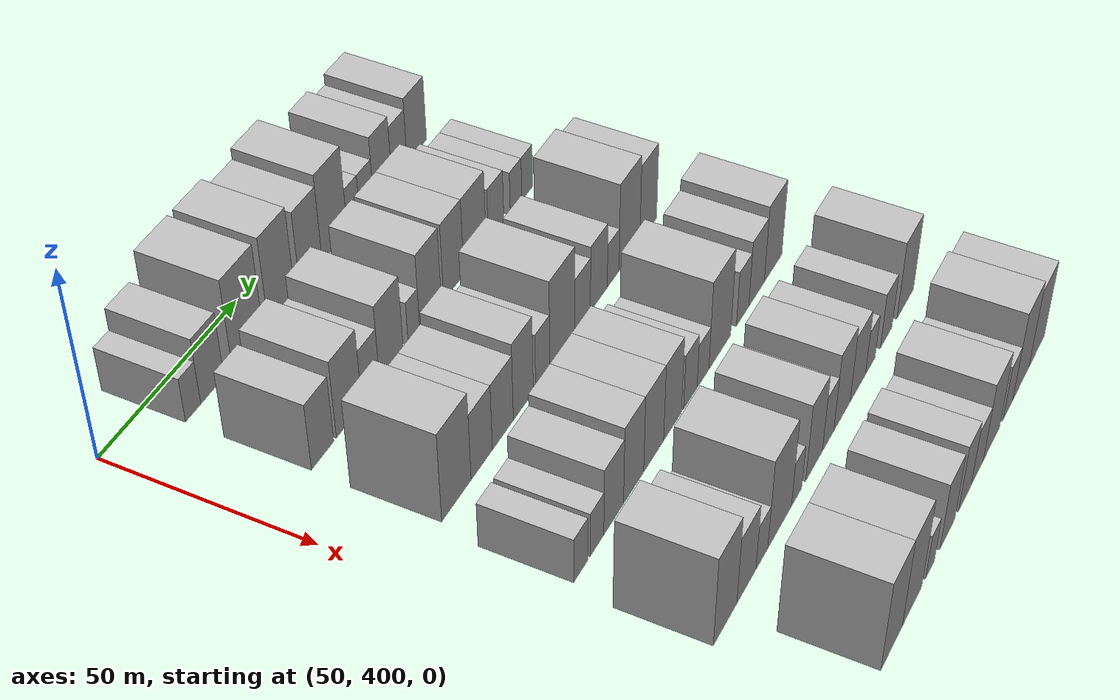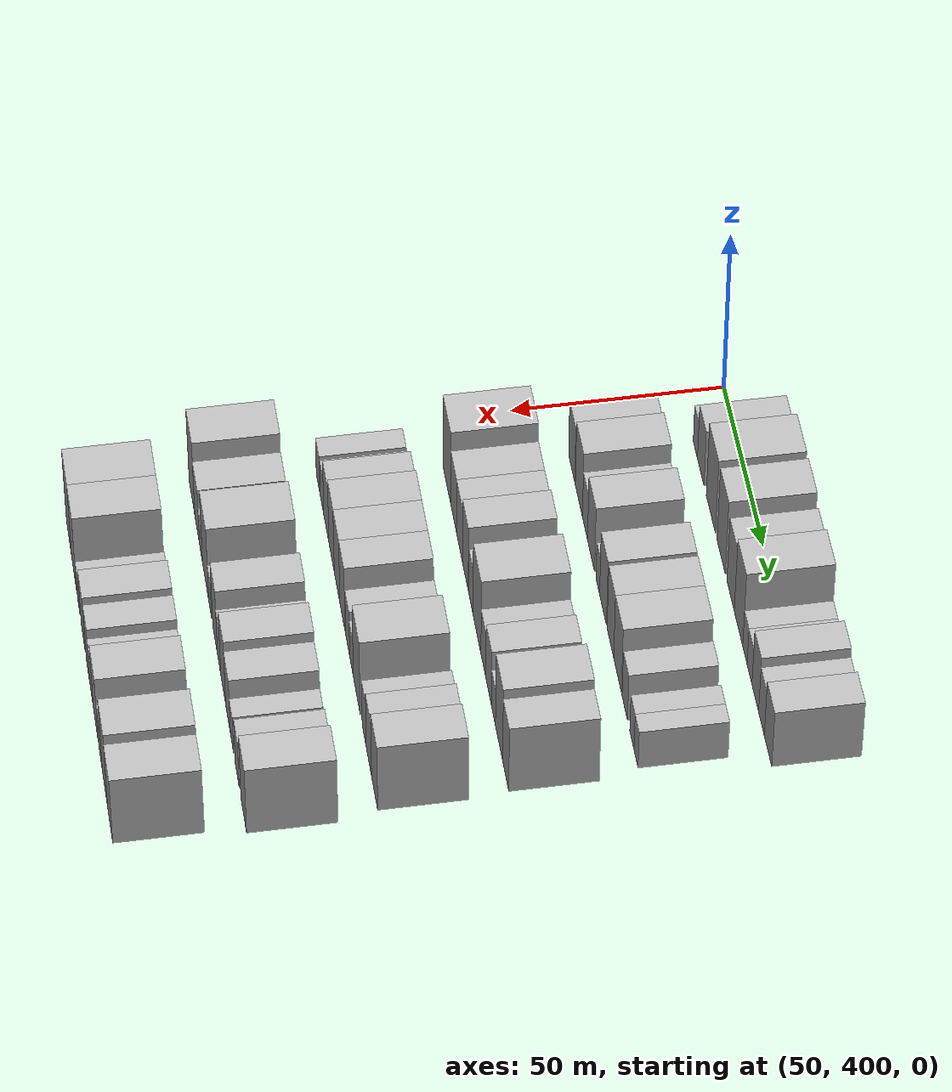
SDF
<sdf version="1.6">
 <world name="default">
  <model name="building_106">
   <static>1</static>
   <pose>50.0000 418.4999 0 0.000000 0.000000 0.000000</pose>
   <link name="link">
    <pose>0 0 6.00 0 0 0</pose>
    <collision name="collision"><geometry><box><size>20.0000 5.4860 12.0000</size></box></geometry></collision>
    <visual name="visual">
     <cast_shadows>0</cast_shadows>
     <geometry><box><size>20.0000 5.4860 12.0000</size></box></geometry>
     <material>
      <script>
       <uri>model://HANNAS_wall/materials/scripts</uri>
       <uri>model://HANNAS_wall/materials/textures</uri>
       <name>vrc/HANNAS_wall</name>
      </script>
     </material>
    </visual>
   </link>
  </model>
  <model name="building_107">
   <static>1</static>
   <pose>50.0000 425.4854 0 0.000000 0.000000 0.000000</pose>
   <link name="link">
    <pose>0 0 9.00 0 0 0</pose>
    <collision name="collision"><geometry><box><size>20.0000 8.4850 18.0000</size></box></geometry></collision>
    <visual name="visual">
     <cast_shadows>0</cast_shadows>
     <geometry><box><size>20.0000 8.4850 18.0000</size></box></geometry>
     <material>
      <script>
       <uri>model://HANNAS_wall/materials/scripts</uri>
       <uri>model://HANNAS_wall/materials/textures</uri>
       <name>vrc/HANNAS_wall</name>
      </script>
     </material>
    </visual>
   </link>
  </model>
  <model name="building_108">
   <static>1</static>
   <pose>50.0000 438.6459 0 0.000000 0.000000 0.000000</pose>
   <link name="link">
    <pose>0 0 12.00 0 0 0</pose>
    <collision name="collision"><geometry><box><size>20.0000 11.8359 24.0000</size></box></geometry></collision>
    <visual name="visual">
     <cast_shadows>0</cast_shadows>
     <geometry><box><size>20.0000 11.8359 24.0000</size></box></geometry>
     <material>
      <script>
       <uri>model://HANNAS_wall/materials/scripts</uri>
       <uri>model://HANNAS_wall/materials/textures</uri>
       <name>vrc/HANNAS_wall</name>
      </script>
     </material>
    </visual>
   </link>
  </model>
  <model name="building_109">
   <static>1</static>
   <pose>50.0000 451.8239 0 0.000000 0.000000 0.000000</pose>
   <link name="link">
    <pose>0 0 12.00 0 0 0</pose>
    <collision name="collision"><geometry><box><size>20.0000 10.5201 24.0000</size></box></geometry></collision>
    <visual name="visual">
     <cast_shadows>0</cast_shadows>
     <geometry><box><size>20.0000 10.5201 24.0000</size></box></geometry>
     <material>
      <script>
       <uri>model://HANNAS_wall/materials/scripts</uri>
       <uri>model://HANNAS_wall/materials/textures</uri>
       <name>vrc/HANNAS_wall</name>
      </script>
     </material>
    </visual>
   </link>
  </model>
  <model name="building_110">
   <static>1</static>
   <pose>50.0000 463.6680 0 0.000000 0.000000 0.000000</pose>
   <link name="link">
    <pose>0 0 10.50 0 0 0</pose>
    <collision name="collision"><geometry><box><size>20.0000 9.1683 21.0000</size></box></geometry></collision>
    <visual name="visual">
     <cast_shadows>0</cast_shadows>
     <geometry><box><size>20.0000 9.1683 21.0000</size></box></geometry>
     <material>
      <script>
       <uri>model://HANNAS_wall/materials/scripts</uri>
       <uri>model://HANNAS_wall/materials/textures</uri>
       <name>vrc/HANNAS_wall</name>
      </script>
     </material>
    </visual>
   </link>
  </model>
  <model name="building_111">
   <static>1</static>
   <pose>50.0000 473.5326 0 0.000000 0.000000 0.000000</pose>
   <link name="link">
    <pose>0 0 12.00 0 0 0</pose>
    <collision name="collision"><geometry><box><size>20.0000 10.5609 24.0000</size></box></geometry></collision>
    <visual name="visual">
     <cast_shadows>0</cast_shadows>
     <geometry><box><size>20.0000 10.5609 24.0000</size></box></geometry>
     <material>
      <script>
       <uri>model://HANNAS_wall/materials/scripts</uri>
       <uri>model://HANNAS_wall/materials/textures</uri>
       <name>vrc/HANNAS_wall</name>
      </script>
     </material>
    </visual>
   </link>
  </model>
  <model name="building_112">
   <static>1</static>
   <pose>50.0000 481.4887 0 0.000000 0.000000 0.000000</pose>
   <link name="link">
    <pose>0 0 6.00 0 0 0</pose>
    <collision name="collision"><geometry><box><size>20.0000 5.3514 12.0000</size></box></geometry></collision>
    <visual name="visual">
     <cast_shadows>0</cast_shadows>
     <geometry><box><size>20.0000 5.3514 12.0000</size></box></geometry>
     <material>
      <script>
       <uri>model://HANNAS_wall/materials/scripts</uri>
       <uri>model://HANNAS_wall/materials/textures</uri>
       <name>vrc/HANNAS_wall</name>
      </script>
     </material>
    </visual>
   </link>
  </model>
  <model name="building_113">
   <static>1</static>
   <pose>50.0000 487.1434 0 0.000000 0.000000 0.000000</pose>
   <link name="link">
    <pose>0 0 6.00 0 0 0</pose>
    <collision name="collision"><geometry><box><size>20.0000 5.9581 12.0000</size></box></geometry></collision>
    <visual name="visual">
     <cast_shadows>0</cast_shadows>
     <geometry><box><size>20.0000 5.9581 12.0000</size></box></geometry>
     <material>
      <script>
       <uri>model://HANNAS_wall/materials/scripts</uri>
       <uri>model://HANNAS_wall/materials/textures</uri>
       <name>vrc/HANNAS_wall</name>
      </script>
     </material>
    </visual>
   </link>
  </model>
  <model name="building_114">
   <static>1</static>
   <pose>50.0000 494.1637 0 0.000000 0.000000 0.000000</pose>
   <link name="link">
    <pose>0 0 9.00 0 0 0</pose>
    <collision name="collision"><geometry><box><size>20.0000 8.0824 18.0000</size></box></geometry></collision>
    <visual name="visual">
     <cast_shadows>0</cast_shadows>
     <geometry><box><size>20.0000 8.0824 18.0000</size></box></geometry>
     <material>
      <script>
       <uri>model://HANNAS_wall/materials/scripts</uri>
       <uri>model://HANNAS_wall/materials/textures</uri>
       <name>vrc/HANNAS_wall</name>
      </script>
     </material>
    </visual>
   </link>
  </model>
  <model name="building_115">
   <static>1</static>
   <pose>50.0000 501.6531 0 0.000000 0.000000 0.000000</pose>
   <link name="link">
    <pose>0 0 7.50 0 0 0</pose>
    <collision name="collision"><geometry><box><size>20.0000 6.8965 15.0000</size></box></geometry></collision>
    <visual name="visual">
     <cast_shadows>0</cast_shadows>
     <geometry><box><size>20.0000 6.8965 15.0000</size></box></geometry>
     <material>
      <script>
       <uri>model://HANNAS_wall/materials/scripts</uri>
       <uri>model://HANNAS_wall/materials/textures</uri>
       <name>vrc/HANNAS_wall</name>
      </script>
     </material>
    </visual>
   </link>
  </model>
  <model name="building_116">
   <static>1</static>
   <pose>50.0000 509.5723 0 0.000000 0.000000 0.000000</pose>
   <link name="link">
    <pose>0 0 9.00 0 0 0</pose>
    <collision name="collision"><geometry><box><size>20.0000 8.9418 18.0000</size></box></geometry></collision>
    <visual name="visual">
     <cast_shadows>0</cast_shadows>
     <geometry><box><size>20.0000 8.9418 18.0000</size></box></geometry>
     <material>
      <script>
       <uri>model://HANNAS_wall/materials/scripts</uri>
       <uri>model://HANNAS_wall/materials/textures</uri>
       <name>vrc/HANNAS_wall</name>
      </script>
     </material>
    </visual>
   </link>
  </model>
  <model name="building_219">
   <static>1</static>
   <pose>79.0000 419.9383 0 0.000000 0.000000 0.000000</pose>
   <link name="link">
    <pose>0 0 9.00 0 0 0</pose>
    <collision name="collision"><geometry><box><size>20.0000 8.4536 18.0000</size></box></geometry></collision>
    <visual name="visual">
     <cast_shadows>0</cast_shadows>
     <geometry><box><size>20.0000 8.4536 18.0000</size></box></geometry>
     <material>
      <script>
       <uri>model://HANNAS_wall/materials/scripts</uri>
       <uri>model://HANNAS_wall/materials/textures</uri>
       <name>vrc/HANNAS_wall</name>
      </script>
     </material>
    </visual>
   </link>
  </model>
  <model name="building_220">
   <static>1</static>
   <pose>79.0000 430.1579 0 0.000000 0.000000 0.000000</pose>
   <link name="link">
    <pose>0 0 10.50 0 0 0</pose>
    <collision name="collision"><geometry><box><size>20.0000 9.9855 21.0000</size></box></geometry></collision>
    <visual name="visual">
     <cast_shadows>0</cast_shadows>
     <geometry><box><size>20.0000 9.9855 21.0000</size></box></geometry>
     <material>
      <script>
       <uri>model://HANNAS_wall/materials/scripts</uri>
       <uri>model://HANNAS_wall/materials/textures</uri>
       <name>vrc/HANNAS_wall</name>
      </script>
     </material>
    </visual>
   </link>
  </model>
  <model name="building_221">
   <static>1</static>
   <pose>79.0000 438.7008 0 0.000000 0.000000 0.000000</pose>
   <link name="link">
    <pose>0 0 7.50 0 0 0</pose>
    <collision name="collision"><geometry><box><size>20.0000 7.1002 15.0000</size></box></geometry></collision>
    <visual name="visual">
     <cast_shadows>0</cast_shadows>
     <geometry><box><size>20.0000 7.1002 15.0000</size></box></geometry>
     <material>
      <script>
       <uri>model://HANNAS_wall/materials/scripts</uri>
       <uri>model://HANNAS_wall/materials/textures</uri>
       <name>vrc/HANNAS_wall</name>
      </script>
     </material>
    </visual>
   </link>
  </model>
  <model name="building_222">
   <static>1</static>
   <pose>79.0000 447.1148 0 0.000000 0.000000 0.000000</pose>
   <link name="link">
    <pose>0 0 10.50 0 0 0</pose>
    <collision name="collision"><geometry><box><size>20.0000 9.7279 21.0000</size></box></geometry></collision>
    <visual name="visual">
     <cast_shadows>0</cast_shadows>
     <geometry><box><size>20.0000 9.7279 21.0000</size></box></geometry>
     <material>
      <script>
       <uri>model://HANNAS_wall/materials/scripts</uri>
       <uri>model://HANNAS_wall/materials/textures</uri>
       <name>vrc/HANNAS_wall</name>
      </script>
     </material>
    </visual>
   </link>
  </model>
  <model name="building_223">
   <static>1</static>
   <pose>79.0000 456.4185 0 0.000000 0.000000 0.000000</pose>
   <link name="link">
    <pose>0 0 6.00 0 0 0</pose>
    <collision name="collision"><geometry><box><size>20.0000 4.8795 12.0000</size></box></geometry></collision>
    <visual name="visual">
     <cast_shadows>0</cast_shadows>
     <geometry><box><size>20.0000 4.8795 12.0000</size></box></geometry>
     <material>
      <script>
       <uri>model://HANNAS_wall/materials/scripts</uri>
       <uri>model://HANNAS_wall/materials/textures</uri>
       <name>vrc/HANNAS_wall</name>
      </script>
     </material>
    </visual>
   </link>
  </model>
  <model name="building_224">
   <static>1</static>
   <pose>79.0000 463.4674 0 0.000000 0.000000 0.000000</pose>
   <link name="link">
    <pose>0 0 10.50 0 0 0</pose>
    <collision name="collision"><geometry><box><size>20.0000 9.2183 21.0000</size></box></geometry></collision>
    <visual name="visual">
     <cast_shadows>0</cast_shadows>
     <geometry><box><size>20.0000 9.2183 21.0000</size></box></geometry>
     <material>
      <script>
       <uri>model://HANNAS_wall/materials/scripts</uri>
       <uri>model://HANNAS_wall/materials/textures</uri>
       <name>vrc/HANNAS_wall</name>
      </script>
     </material>
    </visual>
   </link>
  </model>
  <model name="building_225">
   <static>1</static>
   <pose>79.0000 473.5133 0 0.000000 0.000000 0.000000</pose>
   <link name="link">
    <pose>0 0 10.50 0 0 0</pose>
    <collision name="collision"><geometry><box><size>20.0000 8.8735 21.0000</size></box></geometry></collision>
    <visual name="visual">
     <cast_shadows>0</cast_shadows>
     <geometry><box><size>20.0000 8.8735 21.0000</size></box></geometry>
     <material>
      <script>
       <uri>model://HANNAS_wall/materials/scripts</uri>
       <uri>model://HANNAS_wall/materials/textures</uri>
       <name>vrc/HANNAS_wall</name>
      </script>
     </material>
    </visual>
   </link>
  </model>
  <model name="building_226">
   <static>1</static>
   <pose>79.0000 483.0344 0 0.000000 0.000000 0.000000</pose>
   <link name="link">
    <pose>0 0 10.50 0 0 0</pose>
    <collision name="collision"><geometry><box><size>20.0000 10.1686 21.0000</size></box></geometry></collision>
    <visual name="visual">
     <cast_shadows>0</cast_shadows>
     <geometry><box><size>20.0000 10.1686 21.0000</size></box></geometry>
     <material>
      <script>
       <uri>model://HANNAS_wall/materials/scripts</uri>
       <uri>model://HANNAS_wall/materials/textures</uri>
       <name>vrc/HANNAS_wall</name>
      </script>
     </material>
    </visual>
   </link>
  </model>
  <model name="building_227">
   <static>1</static>
   <pose>79.0000 492.7130 0 0.000000 0.000000 0.000000</pose>
   <link name="link">
    <pose>0 0 7.50 0 0 0</pose>
    <collision name="collision"><geometry><box><size>20.0000 7.1885 15.0000</size></box></geometry></collision>
    <visual name="visual">
     <cast_shadows>0</cast_shadows>
     <geometry><box><size>20.0000 7.1885 15.0000</size></box></geometry>
     <material>
      <script>
       <uri>model://HANNAS_wall/materials/scripts</uri>
       <uri>model://HANNAS_wall/materials/textures</uri>
       <name>vrc/HANNAS_wall</name>
      </script>
     </material>
    </visual>
   </link>
  </model>
  <model name="building_228">
   <static>1</static>
   <pose>79.0000 502.0657 0 0.000000 0.000000 0.000000</pose>
   <link name="link">
    <pose>0 0 6.00 0 0 0</pose>
    <collision name="collision"><geometry><box><size>20.0000 5.5170 12.0000</size></box></geometry></collision>
    <visual name="visual">
     <cast_shadows>0</cast_shadows>
     <geometry><box><size>20.0000 5.5170 12.0000</size></box></geometry>
     <material>
      <script>
       <uri>model://HANNAS_wall/materials/scripts</uri>
       <uri>model://HANNAS_wall/materials/textures</uri>
       <name>vrc/HANNAS_wall</name>
      </script>
     </material>
    </visual>
   </link>
  </model>
  <model name="building_229">
   <static>1</static>
   <pose>79.0000 507.4624 0 0.000000 0.000000 0.000000</pose>
   <link name="link">
    <pose>0 0 6.00 0 0 0</pose>
    <collision name="collision"><geometry><box><size>20.0000 5.2763 12.0000</size></box></geometry></collision>
    <visual name="visual">
     <cast_shadows>0</cast_shadows>
     <geometry><box><size>20.0000 5.2763 12.0000</size></box></geometry>
     <material>
      <script>
       <uri>model://HANNAS_wall/materials/scripts</uri>
       <uri>model://HANNAS_wall/materials/textures</uri>
       <name>vrc/HANNAS_wall</name>
      </script>
     </material>
    </visual>
   </link>
  </model>
  <model name="building_322">
   <static>1</static>
   <pose>108.0000 421.1063 0 0.000000 0.000000 0.000000</pose>
   <link name="link">
    <pose>0 0 12.00 0 0 0</pose>
    <collision name="collision"><geometry><box><size>20.0000 11.8080 24.0000</size></box></geometry></collision>
    <visual name="visual">
     <cast_shadows>0</cast_shadows>
     <geometry><box><size>20.0000 11.8080 24.0000</size></box></geometry>
     <material>
      <script>
       <uri>model://HANNAS_wall/materials/scripts</uri>
       <uri>model://HANNAS_wall/materials/textures</uri>
       <name>vrc/HANNAS_wall</name>
      </script>
     </material>
    </visual>
   </link>
  </model>
  <model name="building_323">
   <static>1</static>
   <pose>108.0000 431.4260 0 0.000000 0.000000 0.000000</pose>
   <link name="link">
    <pose>0 0 9.00 0 0 0</pose>
    <collision name="collision"><geometry><box><size>20.0000 8.8314 18.0000</size></box></geometry></collision>
    <visual name="visual">
     <cast_shadows>0</cast_shadows>
     <geometry><box><size>20.0000 8.8314 18.0000</size></box></geometry>
     <material>
      <script>
       <uri>model://HANNAS_wall/materials/scripts</uri>
       <uri>model://HANNAS_wall/materials/textures</uri>
       <name>vrc/HANNAS_wall</name>
      </script>
     </material>
    </visual>
   </link>
  </model>
  <model name="building_324">
   <static>1</static>
   <pose>108.0000 440.2986 0 0.000000 0.000000 0.000000</pose>
   <link name="link">
    <pose>0 0 9.00 0 0 0</pose>
    <collision name="collision"><geometry><box><size>20.0000 8.9138 18.0000</size></box></geometry></collision>
    <visual name="visual">
     <cast_shadows>0</cast_shadows>
     <geometry><box><size>20.0000 8.9138 18.0000</size></box></geometry>
     <material>
      <script>
       <uri>model://HANNAS_wall/materials/scripts</uri>
       <uri>model://HANNAS_wall/materials/textures</uri>
       <name>vrc/HANNAS_wall</name>
      </script>
     </material>
    </visual>
   </link>
  </model>
  <model name="building_325">
   <static>1</static>
   <pose>108.0000 449.1012 0 0.000000 0.000000 0.000000</pose>
   <link name="link">
    <pose>0 0 10.50 0 0 0</pose>
    <collision name="collision"><geometry><box><size>20.0000 8.6914 21.0000</size></box></geometry></collision>
    <visual name="visual">
     <cast_shadows>0</cast_shadows>
     <geometry><box><size>20.0000 8.6914 21.0000</size></box></geometry>
     <material>
      <script>
       <uri>model://HANNAS_wall/materials/scripts</uri>
       <uri>model://HANNAS_wall/materials/textures</uri>
       <name>vrc/HANNAS_wall</name>
      </script>
     </material>
    </visual>
   </link>
  </model>
  <model name="building_326">
   <static>1</static>
   <pose>108.0000 457.6568 0 0.000000 0.000000 0.000000</pose>
   <link name="link">
    <pose>0 0 7.50 0 0 0</pose>
    <collision name="collision"><geometry><box><size>20.0000 6.4198 15.0000</size></box></geometry></collision>
    <visual name="visual">
     <cast_shadows>0</cast_shadows>
     <geometry><box><size>20.0000 6.4198 15.0000</size></box></geometry>
     <material>
      <script>
       <uri>model://HANNAS_wall/materials/scripts</uri>
       <uri>model://HANNAS_wall/materials/textures</uri>
       <name>vrc/HANNAS_wall</name>
      </script>
     </material>
    </visual>
   </link>
  </model>
  <model name="building_327">
   <static>1</static>
   <pose>108.0000 466.6124 0 0.000000 0.000000 0.000000</pose>
   <link name="link">
    <pose>0 0 12.00 0 0 0</pose>
    <collision name="collision"><geometry><box><size>20.0000 11.4914 24.0000</size></box></geometry></collision>
    <visual name="visual">
     <cast_shadows>0</cast_shadows>
     <geometry><box><size>20.0000 11.4914 24.0000</size></box></geometry>
     <material>
      <script>
       <uri>model://HANNAS_wall/materials/scripts</uri>
       <uri>model://HANNAS_wall/materials/textures</uri>
       <name>vrc/HANNAS_wall</name>
      </script>
     </material>
    </visual>
   </link>
  </model>
  <model name="building_328">
   <static>1</static>
   <pose>108.0000 475.9756 0 0.000000 0.000000 0.000000</pose>
   <link name="link">
    <pose>0 0 7.50 0 0 0</pose>
    <collision name="collision"><geometry><box><size>20.0000 7.2351 15.0000</size></box></geometry></collision>
    <visual name="visual">
     <cast_shadows>0</cast_shadows>
     <geometry><box><size>20.0000 7.2351 15.0000</size></box></geometry>
     <material>
      <script>
       <uri>model://HANNAS_wall/materials/scripts</uri>
       <uri>model://HANNAS_wall/materials/textures</uri>
       <name>vrc/HANNAS_wall</name>
      </script>
     </material>
    </visual>
   </link>
  </model>
  <model name="building_329">
   <static>1</static>
   <pose>108.0000 483.6457 0 0.000000 0.000000 0.000000</pose>
   <link name="link">
    <pose>0 0 9.00 0 0 0</pose>
    <collision name="collision"><geometry><box><size>20.0000 8.1050 18.0000</size></box></geometry></collision>
    <visual name="visual">
     <cast_shadows>0</cast_shadows>
     <geometry><box><size>20.0000 8.1050 18.0000</size></box></geometry>
     <material>
      <script>
       <uri>model://HANNAS_wall/materials/scripts</uri>
       <uri>model://HANNAS_wall/materials/textures</uri>
       <name>vrc/HANNAS_wall</name>
      </script>
     </material>
    </visual>
   </link>
  </model>
  <model name="building_330">
   <static>1</static>
   <pose>108.0000 490.5838 0 0.000000 0.000000 0.000000</pose>
   <link name="link">
    <pose>0 0 6.00 0 0 0</pose>
    <collision name="collision"><geometry><box><size>20.0000 5.7712 12.0000</size></box></geometry></collision>
    <visual name="visual">
     <cast_shadows>0</cast_shadows>
     <geometry><box><size>20.0000 5.7712 12.0000</size></box></geometry>
     <material>
      <script>
       <uri>model://HANNAS_wall/materials/scripts</uri>
       <uri>model://HANNAS_wall/materials/textures</uri>
       <name>vrc/HANNAS_wall</name>
      </script>
     </material>
    </visual>
   </link>
  </model>
  <model name="building_331">
   <static>1</static>
   <pose>108.0000 498.6808 0 0.000000 0.000000 0.000000</pose>
   <link name="link">
    <pose>0 0 12.00 0 0 0</pose>
    <collision name="collision"><geometry><box><size>20.0000 10.4228 24.0000</size></box></geometry></collision>
    <visual name="visual">
     <cast_shadows>0</cast_shadows>
     <geometry><box><size>20.0000 10.4228 24.0000</size></box></geometry>
     <material>
      <script>
       <uri>model://HANNAS_wall/materials/scripts</uri>
       <uri>model://HANNAS_wall/materials/textures</uri>
       <name>vrc/HANNAS_wall</name>
      </script>
     </material>
    </visual>
   </link>
  </model>
  <model name="building_332">
   <static>1</static>
   <pose>108.0000 508.1847 0 0.000000 0.000000 0.000000</pose>
   <link name="link">
    <pose>0 0 10.50 0 0 0</pose>
    <collision name="collision"><geometry><box><size>20.0000 8.5850 21.0000</size></box></geometry></collision>
    <visual name="visual">
     <cast_shadows>0</cast_shadows>
     <geometry><box><size>20.0000 8.5850 21.0000</size></box></geometry>
     <material>
      <script>
       <uri>model://HANNAS_wall/materials/scripts</uri>
       <uri>model://HANNAS_wall/materials/textures</uri>
       <name>vrc/HANNAS_wall</name>
      </script>
     </material>
    </visual>
   </link>
  </model>
  <model name="building_434">
   <static>1</static>
   <pose>137.0000 415.9030 0 0.000000 0.000000 0.000000</pose>
   <link name="link">
    <pose>0 0 6.00 0 0 0</pose>
    <collision name="collision"><geometry><box><size>20.0000 5.8945 12.0000</size></box></geometry></collision>
    <visual name="visual">
     <cast_shadows>0</cast_shadows>
     <geometry><box><size>20.0000 5.8945 12.0000</size></box></geometry>
     <material>
      <script>
       <uri>model://HANNAS_wall/materials/scripts</uri>
       <uri>model://HANNAS_wall/materials/textures</uri>
       <name>vrc/HANNAS_wall</name>
      </script>
     </material>
    </visual>
   </link>
  </model>
  <model name="building_435">
   <static>1</static>
   <pose>137.0000 422.7795 0 0.000000 0.000000 0.000000</pose>
   <link name="link">
    <pose>0 0 6.00 0 0 0</pose>
    <collision name="collision"><geometry><box><size>20.0000 5.8584 12.0000</size></box></geometry></collision>
    <visual name="visual">
     <cast_shadows>0</cast_shadows>
     <geometry><box><size>20.0000 5.8584 12.0000</size></box></geometry>
     <material>
      <script>
       <uri>model://HANNAS_wall/materials/scripts</uri>
       <uri>model://HANNAS_wall/materials/textures</uri>
       <name>vrc/HANNAS_wall</name>
      </script>
     </material>
    </visual>
   </link>
  </model>
  <model name="building_436">
   <static>1</static>
   <pose>137.0000 430.0498 0 0.000000 0.000000 0.000000</pose>
   <link name="link">
    <pose>0 0 9.00 0 0 0</pose>
    <collision name="collision"><geometry><box><size>20.0000 8.6822 18.0000</size></box></geometry></collision>
    <visual name="visual">
     <cast_shadows>0</cast_shadows>
     <geometry><box><size>20.0000 8.6822 18.0000</size></box></geometry>
     <material>
      <script>
       <uri>model://HANNAS_wall/materials/scripts</uri>
       <uri>model://HANNAS_wall/materials/textures</uri>
       <name>vrc/HANNAS_wall</name>
      </script>
     </material>
    </visual>
   </link>
  </model>
  <model name="building_437">
   <static>1</static>
   <pose>137.0000 438.9311 0 0.000000 0.000000 0.000000</pose>
   <link name="link">
    <pose>0 0 10.50 0 0 0</pose>
    <collision name="collision"><geometry><box><size>20.0000 9.0805 21.0000</size></box></geometry></collision>
    <visual name="visual">
     <cast_shadows>0</cast_shadows>
     <geometry><box><size>20.0000 9.0805 21.0000</size></box></geometry>
     <material>
      <script>
       <uri>model://HANNAS_wall/materials/scripts</uri>
       <uri>model://HANNAS_wall/materials/textures</uri>
       <name>vrc/HANNAS_wall</name>
      </script>
     </material>
    </visual>
   </link>
  </model>
  <model name="building_438">
   <static>1</static>
   <pose>137.0000 448.1184 0 0.000000 0.000000 0.000000</pose>
   <link name="link">
    <pose>0 0 10.50 0 0 0</pose>
    <collision name="collision"><geometry><box><size>20.0000 9.2941 21.0000</size></box></geometry></collision>
    <visual name="visual">
     <cast_shadows>0</cast_shadows>
     <geometry><box><size>20.0000 9.2941 21.0000</size></box></geometry>
     <material>
      <script>
       <uri>model://HANNAS_wall/materials/scripts</uri>
       <uri>model://HANNAS_wall/materials/textures</uri>
       <name>vrc/HANNAS_wall</name>
      </script>
     </material>
    </visual>
   </link>
  </model>
  <model name="building_439">
   <static>1</static>
   <pose>137.0000 457.0221 0 0.000000 0.000000 0.000000</pose>
   <link name="link">
    <pose>0 0 10.50 0 0 0</pose>
    <collision name="collision"><geometry><box><size>20.0000 8.5132 21.0000</size></box></geometry></collision>
    <visual name="visual">
     <cast_shadows>0</cast_shadows>
     <geometry><box><size>20.0000 8.5132 21.0000</size></box></geometry>
     <material>
      <script>
       <uri>model://HANNAS_wall/materials/scripts</uri>
       <uri>model://HANNAS_wall/materials/textures</uri>
       <name>vrc/HANNAS_wall</name>
      </script>
     </material>
    </visual>
   </link>
  </model>
  <model name="building_440">
   <static>1</static>
   <pose>137.0000 465.5816 0 0.000000 0.000000 0.000000</pose>
   <link name="link">
    <pose>0 0 7.50 0 0 0</pose>
    <collision name="collision"><geometry><box><size>20.0000 6.6058 15.0000</size></box></geometry></collision>
    <visual name="visual">
     <cast_shadows>0</cast_shadows>
     <geometry><box><size>20.0000 6.6058 15.0000</size></box></geometry>
     <material>
      <script>
       <uri>model://HANNAS_wall/materials/scripts</uri>
       <uri>model://HANNAS_wall/materials/textures</uri>
       <name>vrc/HANNAS_wall</name>
      </script>
     </material>
    </visual>
   </link>
  </model>
  <model name="building_441">
   <static>1</static>
   <pose>137.0000 471.8350 0 0.000000 0.000000 0.000000</pose>
   <link name="link">
    <pose>0 0 6.00 0 0 0</pose>
    <collision name="collision"><geometry><box><size>20.0000 5.9009 12.0000</size></box></geometry></collision>
    <visual name="visual">
     <cast_shadows>0</cast_shadows>
     <geometry><box><size>20.0000 5.9009 12.0000</size></box></geometry>
     <material>
      <script>
       <uri>model://HANNAS_wall/materials/scripts</uri>
       <uri>model://HANNAS_wall/materials/textures</uri>
       <name>vrc/HANNAS_wall</name>
      </script>
     </material>
    </visual>
   </link>
  </model>
  <model name="building_442">
   <static>1</static>
   <pose>137.0000 480.3517 0 0.000000 0.000000 0.000000</pose>
   <link name="link">
    <pose>0 0 12.00 0 0 0</pose>
    <collision name="collision"><geometry><box><size>20.0000 11.1327 24.0000</size></box></geometry></collision>
    <visual name="visual">
     <cast_shadows>0</cast_shadows>
     <geometry><box><size>20.0000 11.1327 24.0000</size></box></geometry>
     <material>
      <script>
       <uri>model://HANNAS_wall/materials/scripts</uri>
       <uri>model://HANNAS_wall/materials/textures</uri>
       <name>vrc/HANNAS_wall</name>
      </script>
     </material>
    </visual>
   </link>
  </model>
  <model name="building_443">
   <static>1</static>
   <pose>137.0000 492.1698 0 0.000000 0.000000 0.000000</pose>
   <link name="link">
    <pose>0 0 7.50 0 0 0</pose>
    <collision name="collision"><geometry><box><size>20.0000 6.5033 15.0000</size></box></geometry></collision>
    <visual name="visual">
     <cast_shadows>0</cast_shadows>
     <geometry><box><size>20.0000 6.5033 15.0000</size></box></geometry>
     <material>
      <script>
       <uri>model://HANNAS_wall/materials/scripts</uri>
       <uri>model://HANNAS_wall/materials/textures</uri>
       <name>vrc/HANNAS_wall</name>
      </script>
     </material>
    </visual>
   </link>
  </model>
  <model name="building_444">
   <static>1</static>
   <pose>137.0000 499.6038 0 0.000000 0.000000 0.000000</pose>
   <link name="link">
    <pose>0 0 9.00 0 0 0</pose>
    <collision name="collision"><geometry><box><size>20.0000 8.3646 18.0000</size></box></geometry></collision>
    <visual name="visual">
     <cast_shadows>0</cast_shadows>
     <geometry><box><size>20.0000 8.3646 18.0000</size></box></geometry>
     <material>
      <script>
       <uri>model://HANNAS_wall/materials/scripts</uri>
       <uri>model://HANNAS_wall/materials/textures</uri>
       <name>vrc/HANNAS_wall</name>
      </script>
     </material>
    </visual>
   </link>
  </model>
  <model name="building_445">
   <static>1</static>
   <pose>137.0000 508.6300 0 0.000000 0.000000 0.000000</pose>
   <link name="link">
    <pose>0 0 10.50 0 0 0</pose>
    <collision name="collision"><geometry><box><size>20.0000 9.6879 21.0000</size></box></geometry></collision>
    <visual name="visual">
     <cast_shadows>0</cast_shadows>
     <geometry><box><size>20.0000 9.6879 21.0000</size></box></geometry>
     <material>
      <script>
       <uri>model://HANNAS_wall/materials/scripts</uri>
       <uri>model://HANNAS_wall/materials/textures</uri>
       <name>vrc/HANNAS_wall</name>
      </script>
     </material>
    </visual>
   </link>
  </model>
  <model name="building_549">
   <static>1</static>
   <pose>166.0000 416.2551 0 0.000000 0.000000 0.000000</pose>
   <link name="link">
    <pose>0 0 12.00 0 0 0</pose>
    <collision name="collision"><geometry><box><size>20.0000 10.6991 24.0000</size></box></geometry></collision>
    <visual name="visual">
     <cast_shadows>0</cast_shadows>
     <geometry><box><size>20.0000 10.6991 24.0000</size></box></geometry>
     <material>
      <script>
       <uri>model://HANNAS_wall/materials/scripts</uri>
       <uri>model://HANNAS_wall/materials/textures</uri>
       <name>vrc/HANNAS_wall</name>
      </script>
     </material>
    </visual>
   </link>
  </model>
  <model name="building_550">
   <static>1</static>
   <pose>166.0000 426.0729 0 0.000000 0.000000 0.000000</pose>
   <link name="link">
    <pose>0 0 9.00 0 0 0</pose>
    <collision name="collision"><geometry><box><size>20.0000 8.9363 18.0000</size></box></geometry></collision>
    <visual name="visual">
     <cast_shadows>0</cast_shadows>
     <geometry><box><size>20.0000 8.9363 18.0000</size></box></geometry>
     <material>
      <script>
       <uri>model://HANNAS_wall/materials/scripts</uri>
       <uri>model://HANNAS_wall/materials/textures</uri>
       <name>vrc/HANNAS_wall</name>
      </script>
     </material>
    </visual>
   </link>
  </model>
  <model name="building_551">
   <static>1</static>
   <pose>166.0000 433.3871 0 0.000000 0.000000 0.000000</pose>
   <link name="link">
    <pose>0 0 6.00 0 0 0</pose>
    <collision name="collision"><geometry><box><size>20.0000 5.6922 12.0000</size></box></geometry></collision>
    <visual name="visual">
     <cast_shadows>0</cast_shadows>
     <geometry><box><size>20.0000 5.6922 12.0000</size></box></geometry>
     <material>
      <script>
       <uri>model://HANNAS_wall/materials/scripts</uri>
       <uri>model://HANNAS_wall/materials/textures</uri>
       <name>vrc/HANNAS_wall</name>
      </script>
     </material>
    </visual>
   </link>
  </model>
  <model name="building_552">
   <static>1</static>
   <pose>166.0000 442.0796 0 0.000000 0.000000 0.000000</pose>
   <link name="link">
    <pose>0 0 12.00 0 0 0</pose>
    <collision name="collision"><geometry><box><size>20.0000 11.6928 24.0000</size></box></geometry></collision>
    <visual name="visual">
     <cast_shadows>0</cast_shadows>
     <geometry><box><size>20.0000 11.6928 24.0000</size></box></geometry>
     <material>
      <script>
       <uri>model://HANNAS_wall/materials/scripts</uri>
       <uri>model://HANNAS_wall/materials/textures</uri>
       <name>vrc/HANNAS_wall</name>
      </script>
     </material>
    </visual>
   </link>
  </model>
  <model name="building_553">
   <static>1</static>
   <pose>166.0000 450.5136 0 0.000000 0.000000 0.000000</pose>
   <link name="link">
    <pose>0 0 6.00 0 0 0</pose>
    <collision name="collision"><geometry><box><size>20.0000 5.1751 12.0000</size></box></geometry></collision>
    <visual name="visual">
     <cast_shadows>0</cast_shadows>
     <geometry><box><size>20.0000 5.1751 12.0000</size></box></geometry>
     <material>
      <script>
       <uri>model://HANNAS_wall/materials/scripts</uri>
       <uri>model://HANNAS_wall/materials/textures</uri>
       <name>vrc/HANNAS_wall</name>
      </script>
     </material>
    </visual>
   </link>
  </model>
  <model name="building_554">
   <static>1</static>
   <pose>166.0000 459.4608 0 0.000000 0.000000 0.000000</pose>
   <link name="link">
    <pose>0 0 10.50 0 0 0</pose>
    <collision name="collision"><geometry><box><size>20.0000 8.7194 21.0000</size></box></geometry></collision>
    <visual name="visual">
     <cast_shadows>0</cast_shadows>
     <geometry><box><size>20.0000 8.7194 21.0000</size></box></geometry>
     <material>
      <script>
       <uri>model://HANNAS_wall/materials/scripts</uri>
       <uri>model://HANNAS_wall/materials/textures</uri>
       <name>vrc/HANNAS_wall</name>
      </script>
     </material>
    </visual>
   </link>
  </model>
  <model name="building_555">
   <static>1</static>
   <pose>166.0000 466.8502 0 0.000000 0.000000 0.000000</pose>
   <link name="link">
    <pose>0 0 7.50 0 0 0</pose>
    <collision name="collision"><geometry><box><size>20.0000 6.0593 15.0000</size></box></geometry></collision>
    <visual name="visual">
     <cast_shadows>0</cast_shadows>
     <geometry><box><size>20.0000 6.0593 15.0000</size></box></geometry>
     <material>
      <script>
       <uri>model://HANNAS_wall/materials/scripts</uri>
       <uri>model://HANNAS_wall/materials/textures</uri>
       <name>vrc/HANNAS_wall</name>
      </script>
     </material>
    </visual>
   </link>
  </model>
  <model name="building_556">
   <static>1</static>
   <pose>166.0000 474.3178 0 0.000000 0.000000 0.000000</pose>
   <link name="link">
    <pose>0 0 10.50 0 0 0</pose>
    <collision name="collision"><geometry><box><size>20.0000 8.8760 21.0000</size></box></geometry></collision>
    <visual name="visual">
     <cast_shadows>0</cast_shadows>
     <geometry><box><size>20.0000 8.8760 21.0000</size></box></geometry>
     <material>
      <script>
       <uri>model://HANNAS_wall/materials/scripts</uri>
       <uri>model://HANNAS_wall/materials/textures</uri>
       <name>vrc/HANNAS_wall</name>
      </script>
     </material>
    </visual>
   </link>
  </model>
  <model name="building_557">
   <static>1</static>
   <pose>166.0000 483.0328 0 0.000000 0.000000 0.000000</pose>
   <link name="link">
    <pose>0 0 9.00 0 0 0</pose>
    <collision name="collision"><geometry><box><size>20.0000 8.5539 18.0000</size></box></geometry></collision>
    <visual name="visual">
     <cast_shadows>0</cast_shadows>
     <geometry><box><size>20.0000 8.5539 18.0000</size></box></geometry>
     <material>
      <script>
       <uri>model://HANNAS_wall/materials/scripts</uri>
       <uri>model://HANNAS_wall/materials/textures</uri>
       <name>vrc/HANNAS_wall</name>
      </script>
     </material>
    </visual>
   </link>
  </model>
  <model name="building_558">
   <static>1</static>
   <pose>166.0000 490.0774 0 0.000000 0.000000 0.000000</pose>
   <link name="link">
    <pose>0 0 6.00 0 0 0</pose>
    <collision name="collision"><geometry><box><size>20.0000 5.5351 12.0000</size></box></geometry></collision>
    <visual name="visual">
     <cast_shadows>0</cast_shadows>
     <geometry><box><size>20.0000 5.5351 12.0000</size></box></geometry>
     <material>
      <script>
       <uri>model://HANNAS_wall/materials/scripts</uri>
       <uri>model://HANNAS_wall/materials/textures</uri>
       <name>vrc/HANNAS_wall</name>
      </script>
     </material>
    </visual>
   </link>
  </model>
  <model name="building_559">
   <static>1</static>
   <pose>166.0000 499.2312 0 0.000000 0.000000 0.000000</pose>
   <link name="link">
    <pose>0 0 7.50 0 0 0</pose>
    <collision name="collision"><geometry><box><size>20.0000 6.7725 15.0000</size></box></geometry></collision>
    <visual name="visual">
     <cast_shadows>0</cast_shadows>
     <geometry><box><size>20.0000 6.7725 15.0000</size></box></geometry>
     <material>
      <script>
       <uri>model://HANNAS_wall/materials/scripts</uri>
       <uri>model://HANNAS_wall/materials/textures</uri>
       <name>vrc/HANNAS_wall</name>
      </script>
     </material>
    </visual>
   </link>
  </model>
  <model name="building_560">
   <static>1</static>
   <pose>166.0000 510.6079 0 0.000000 0.000000 0.000000</pose>
   <link name="link">
    <pose>0 0 10.50 0 0 0</pose>
    <collision name="collision"><geometry><box><size>20.0000 9.9808 21.0000</size></box></geometry></collision>
    <visual name="visual">
     <cast_shadows>0</cast_shadows>
     <geometry><box><size>20.0000 9.9808 21.0000</size></box></geometry>
     <material>
      <script>
       <uri>model://HANNAS_wall/materials/scripts</uri>
       <uri>model://HANNAS_wall/materials/textures</uri>
       <name>vrc/HANNAS_wall</name>
      </script>
     </material>
    </visual>
   </link>
  </model>
  <model name="building_661">
   <static>1</static>
   <pose>195.0000 424.4621 0 0.000000 0.000000 0.000000</pose>
   <link name="link">
    <pose>0 0 12.00 0 0 0</pose>
    <collision name="collision"><geometry><box><size>20.0000 10.9677 24.0000</size></box></geometry></collision>
    <visual name="visual">
     <cast_shadows>0</cast_shadows>
     <geometry><box><size>20.0000 10.9677 24.0000</size></box></geometry>
     <material>
      <script>
       <uri>model://HANNAS_wall/materials/scripts</uri>
       <uri>model://HANNAS_wall/materials/textures</uri>
       <name>vrc/HANNAS_wall</name>
      </script>
     </material>
    </visual>
   </link>
  </model>
  <model name="building_662">
   <static>1</static>
   <pose>195.0000 435.1461 0 0.000000 0.000000 0.000000</pose>
   <link name="link">
    <pose>0 0 12.00 0 0 0</pose>
    <collision name="collision"><geometry><box><size>20.0000 10.4002 24.0000</size></box></geometry></collision>
    <visual name="visual">
     <cast_shadows>0</cast_shadows>
     <geometry><box><size>20.0000 10.4002 24.0000</size></box></geometry>
     <material>
      <script>
       <uri>model://HANNAS_wall/materials/scripts</uri>
       <uri>model://HANNAS_wall/materials/textures</uri>
       <name>vrc/HANNAS_wall</name>
      </script>
     </material>
    </visual>
   </link>
  </model>
  <model name="building_663">
   <static>1</static>
   <pose>195.0000 444.7846 0 0.000000 0.000000 0.000000</pose>
   <link name="link">
    <pose>0 0 6.00 0 0 0</pose>
    <collision name="collision"><geometry><box><size>20.0000 4.8768 12.0000</size></box></geometry></collision>
    <visual name="visual">
     <cast_shadows>0</cast_shadows>
     <geometry><box><size>20.0000 4.8768 12.0000</size></box></geometry>
     <material>
      <script>
       <uri>model://HANNAS_wall/materials/scripts</uri>
       <uri>model://HANNAS_wall/materials/textures</uri>
       <name>vrc/HANNAS_wall</name>
      </script>
     </material>
    </visual>
   </link>
  </model>
  <model name="building_664">
   <static>1</static>
   <pose>195.0000 454.4700 0 0.000000 0.000000 0.000000</pose>
   <link name="link">
    <pose>0 0 9.00 0 0 0</pose>
    <collision name="collision"><geometry><box><size>20.0000 8.4940 18.0000</size></box></geometry></collision>
    <visual name="visual">
     <cast_shadows>0</cast_shadows>
     <geometry><box><size>20.0000 8.4940 18.0000</size></box></geometry>
     <material>
      <script>
       <uri>model://HANNAS_wall/materials/scripts</uri>
       <uri>model://HANNAS_wall/materials/textures</uri>
       <name>vrc/HANNAS_wall</name>
      </script>
     </material>
    </visual>
   </link>
  </model>
  <model name="building_665">
   <static>1</static>
   <pose>195.0000 464.3979 0 0.000000 0.000000 0.000000</pose>
   <link name="link">
    <pose>0 0 9.00 0 0 0</pose>
    <collision name="collision"><geometry><box><size>20.0000 7.3617 18.0000</size></box></geometry></collision>
    <visual name="visual">
     <cast_shadows>0</cast_shadows>
     <geometry><box><size>20.0000 7.3617 18.0000</size></box></geometry>
     <material>
      <script>
       <uri>model://HANNAS_wall/materials/scripts</uri>
       <uri>model://HANNAS_wall/materials/textures</uri>
       <name>vrc/HANNAS_wall</name>
      </script>
     </material>
    </visual>
   </link>
  </model>
  <model name="building_666">
   <static>1</static>
   <pose>195.0000 471.6803 0 0.000000 0.000000 0.000000</pose>
   <link name="link">
    <pose>0 0 7.50 0 0 0</pose>
    <collision name="collision"><geometry><box><size>20.0000 7.2032 15.0000</size></box></geometry></collision>
    <visual name="visual">
     <cast_shadows>0</cast_shadows>
     <geometry><box><size>20.0000 7.2032 15.0000</size></box></geometry>
     <material>
      <script>
       <uri>model://HANNAS_wall/materials/scripts</uri>
       <uri>model://HANNAS_wall/materials/textures</uri>
       <name>vrc/HANNAS_wall</name>
      </script>
     </material>
    </visual>
   </link>
  </model>
  <model name="building_667">
   <static>1</static>
   <pose>195.0000 480.2642 0 0.000000 0.000000 0.000000</pose>
   <link name="link">
    <pose>0 0 10.50 0 0 0</pose>
    <collision name="collision"><geometry><box><size>20.0000 9.9646 21.0000</size></box></geometry></collision>
    <visual name="visual">
     <cast_shadows>0</cast_shadows>
     <geometry><box><size>20.0000 9.9646 21.0000</size></box></geometry>
     <material>
      <script>
       <uri>model://HANNAS_wall/materials/scripts</uri>
       <uri>model://HANNAS_wall/materials/textures</uri>
       <name>vrc/HANNAS_wall</name>
      </script>
     </material>
    </visual>
   </link>
  </model>
  <model name="building_668">
   <static>1</static>
   <pose>195.0000 490.3328 0 0.000000 0.000000 0.000000</pose>
   <link name="link">
    <pose>0 0 7.50 0 0 0</pose>
    <collision name="collision"><geometry><box><size>20.0000 6.1725 15.0000</size></box></geometry></collision>
    <visual name="visual">
     <cast_shadows>0</cast_shadows>
     <geometry><box><size>20.0000 6.1725 15.0000</size></box></geometry>
     <material>
      <script>
       <uri>model://HANNAS_wall/materials/scripts</uri>
       <uri>model://HANNAS_wall/materials/textures</uri>
       <name>vrc/HANNAS_wall</name>
      </script>
     </material>
    </visual>
   </link>
  </model>
  <model name="building_669">
   <static>1</static>
   <pose>195.0000 498.6169 0 0.000000 0.000000 0.000000</pose>
   <link name="link">
    <pose>0 0 12.00 0 0 0</pose>
    <collision name="collision"><geometry><box><size>20.0000 10.3957 24.0000</size></box></geometry></collision>
    <visual name="visual">
     <cast_shadows>0</cast_shadows>
     <geometry><box><size>20.0000 10.3957 24.0000</size></box></geometry>
     <material>
      <script>
       <uri>model://HANNAS_wall/materials/scripts</uri>
       <uri>model://HANNAS_wall/materials/textures</uri>
       <name>vrc/HANNAS_wall</name>
      </script>
     </material>
    </visual>
   </link>
  </model>
  <model name="building_670">
   <static>1</static>
   <pose>195.0000 508.9518 0 0.000000 0.000000 0.000000</pose>
   <link name="link">
    <pose>0 0 10.50 0 0 0</pose>
    <collision name="collision"><geometry><box><size>20.0000 10.2742 21.0000</size></box></geometry></collision>
    <visual name="visual">
     <cast_shadows>0</cast_shadows>
     <geometry><box><size>20.0000 10.2742 21.0000</size></box></geometry>
     <material>
      <script>
       <uri>model://HANNAS_wall/materials/scripts</uri>
       <uri>model://HANNAS_wall/materials/textures</uri>
       <name>vrc/HANNAS_wall</name>
      </script>
     </material>
    </visual>
   </link>
  </model>
 </world>
</sdf>
